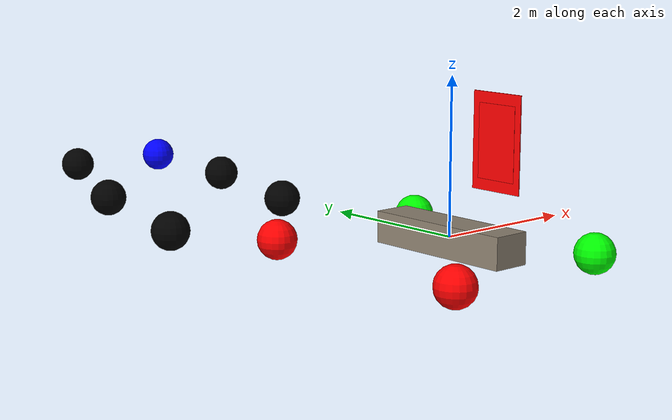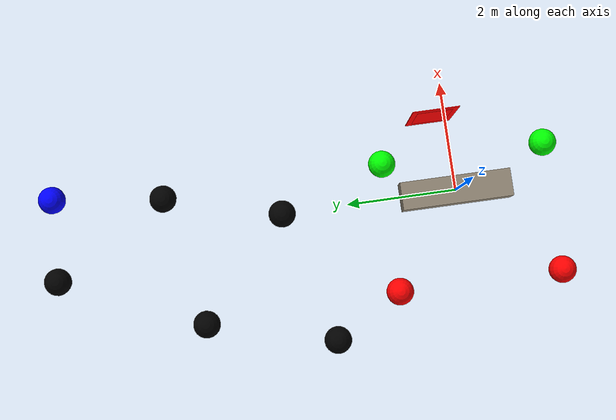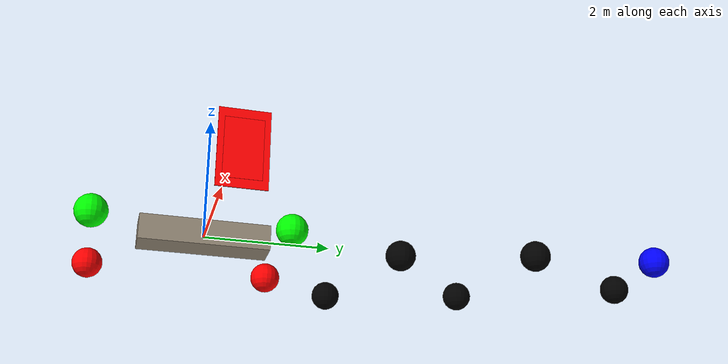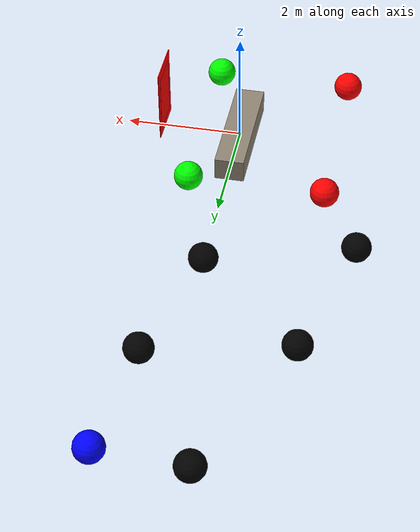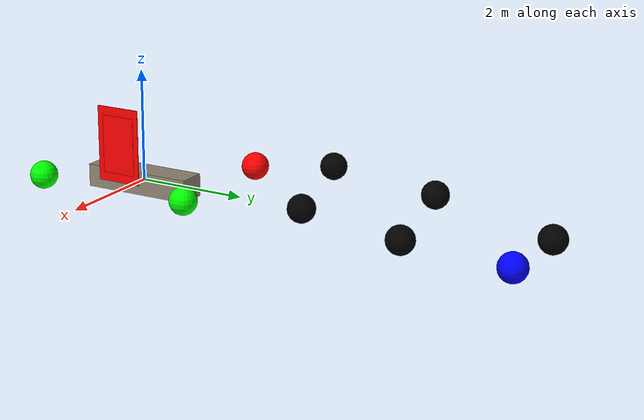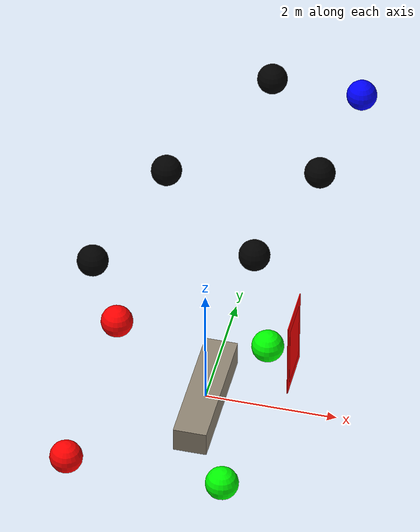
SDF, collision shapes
<?xml version="1.0"?>
<sdf version="1.6">
  <model name="speed_challenge">
    <!-- Speed Challenge -->

    <include>
      <static>true</static>
      <name>dock</name>
      <pose>0 0 0 0 0 1.57079</pose>
      <uri>dock_m4</uri>
    </include>

    <include>
      <static>true</static>
      <name>round_buoy_green_G1</name>
      <pose> 0.66 1.27 0 0 0 0 </pose>
      <uri>round_buoy_green</uri>
    </include>

    <include>
      <static>true</static>
      <name>round_buoy_green_G2</name>
      <pose> 0.66 -1.72 0 0 0 0 </pose>
      <uri>round_buoy_green</uri>
    </include>

     <include>
      <static>true</static>
      <name>round_buoy_red_G1</name>
      <pose> -1.7 1.27 0 0 0 0 </pose>
      <uri>round_buoy_red</uri>
    </include>

     <include>
      <static>true</static>
      <name>round_buoy_red_G2</name>
      <pose> -1.7 -1.72 0 0 0 0 </pose>
      <uri>round_buoy_red</uri>
    </include>

    <include>
      <static>true</static>
      <name>round_buoy_black_G1</name>
      <pose> -0.68 7.42 0 0 0 0 </pose>
      <uri>round_buoy_black</uri>
    </include>

    <include>
      <static>true</static>
      <name>round_buoy_black_G2</name>
      <pose> 0.57 5.34 0 0 0 0 </pose>
      <uri>round_buoy_black</uri>
    </include>

    <include>
      <static>true</static>
      <name>round_buoy_black_G3</name>
      <pose> -1.81 4.83 0 0 0 0 </pose>
      <uri>round_buoy_black</uri>
    </include>

    <include>
      <static>true</static>
      <name>round_buoy_black_G4</name>
      <pose> 0 3.21 0 0 0 0 </pose>
      <uri>round_buoy_black</uri>
    </include>

    <include>
      <static>true</static>
      <name>round_buoy_black_G5</name>
      <pose> -2.41 2.51 0 0 0 0 </pose>
      <uri>round_buoy_black</uri>
    </include>

    <include>
      <static>true</static>
      <name>light_panel</name>
      <pose>1.25 0.38 1 0 0 0</pose>
      <uri>light_panel</uri>
    </include>

    <include>
      <static>true</static>
      <name>round_buoy_blue</name>
      <pose> 0.82 7.36 0 0 0 0 </pose>
      <uri>round_buoy_blue</uri>
    </include>

  </model>
</sdf>

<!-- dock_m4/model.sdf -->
<sdf version="1.6">
  <model name="Dock_m4">
    <static>true</static>
    <link name="base_link">
      <visual name="dock">
        <geometry>
          <mesh>
            <uri>model://dock_m4/assets/dock_m4.stl</uri>
          </mesh>
        </geometry>
        <material>
          <ambient>0.34 0.31 0.27 1</ambient>
          <!-- Red color -->
          <diffuse>0.559642 0.515643 0.446934 1</diffuse>
          <specular>0.01 0.01 0.01 1</specular>
        </material>
      </visual>
      <collision name='tine1'>
        <pose>0 0 0 0 0 0</pose>
        <geometry>
          <box>
            <size>2.02606 0.506918 0.406521</size>
          </box>
        </geometry>
      </collision>
    </link>
  </model>
</sdf>

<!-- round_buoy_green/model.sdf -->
<sdf version="1.6">
    <model name="round_buoy_green">
        <link name="link">
            <inertial>
                <pose>0 0 0 0 0 0</pose>
                <mass>3.5</mass>
                <inertia>
                    <ixx>0.0875</ixx>
                    <ixy>0</ixy>
                    <ixz>0</ixz>
                    <iyy>0.0875</iyy>
                    <iyz>0</iyz>
                    <izz>0.0875</izz>
                </inertia>
            </inertial>
            <collision name="collision">
                <geometry>
                    <sphere>
                        <radius>0.25</radius>
                    </sphere>
                </geometry>
            </collision>
            <visual name="visual">
                <geometry>
                    <mesh>
                        <uri>meshes/mb_round_buoy.dae</uri>
                    </mesh>
                </geometry>
                <material>
                    <ambient>0 1 0 1</ambient>
                    <diffuse>0 1 0 1</diffuse>
                    <specular>0 1 0 1</specular>
                </material>
            </visual>
        </link>
    <!-- Hydrodynamics plugin -->
      <plugin
        filename="gz-waves1-hydrodynamics-system"
        name="gz::sim::systems::Hydrodynamics">

        <link_name>link</link_name>

        <hydrodynamics>
            <damping_on>1</damping_on>
            <viscous_drag_on>1</viscous_drag_on>
            <pressure_drag_on>1</pressure_drag_on>

            <!-- Linear and Angular Damping -->
            <cDampL1>1.0E-6</cDampL1>
            <cDampL2>1.0E-6</cDampL2>
            <cDampR1>1.0E-6</cDampR1>
            <cDampR2>1.0E-6</cDampR2>

            <!-- 'Pressure' Drag -->
            <cPDrag1>1.0E+2</cPDrag1>
            <cPDrag2>1.0E+2</cPDrag2>
            <fPDrag>0.4</fPDrag>
            <cSDrag1>1.0E+2</cSDrag1>
            <cSDrag2>1.0E+2</cSDrag2>
            <fSDrag>0.4</fSDrag>
            <vRDrag>1.0</vRDrag>
        </hydrodynamics>

        <!-- Control visibility of markers -->
        <markers>
            <update_rate>10</update_rate>
            <water_patch>0</water_patch>
            <waterline>0</waterline>
            <underwater_surface>0</underwater_surface>
        </markers>
        </plugin>
    </model>
</sdf>

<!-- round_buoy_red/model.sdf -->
<sdf version="1.6">
    <model name="round_buoy_red">
        <link name="link">
            <inertial>
                <pose>0 0 0 0 0 0</pose>
                <mass>3.5</mass>
                <inertia>
                    <ixx>0.0875</ixx>
                    <ixy>0</ixy>
                    <ixz>0</ixz>
                    <iyy>0.0875</iyy>
                    <iyz>0</iyz>
                    <izz>0.0875</izz>
                </inertia>
            </inertial>
            <collision name="collision">
                <geometry>
                    <sphere>
                        <radius>0.25</radius>
                    </sphere>
                </geometry>
            </collision>
            <visual name="visual">
                <geometry>
                    <mesh>
                        <uri>meshes/mb_round_buoy.dae</uri>
                    </mesh>
                </geometry>
                <material>
                    <ambient>1 0 0 1</ambient>
                    <diffuse>1 0 0 1</diffuse>
                    <specular>1 0 0 1</specular>
                </material>
            </visual>
        </link>
        <!-- Hydrodynamics plugin -->
      <plugin
        filename="gz-waves1-hydrodynamics-system"
        name="gz::sim::systems::Hydrodynamics">

        <link_name>link</link_name>

        <hydrodynamics>
            <damping_on>1</damping_on>
            <viscous_drag_on>1</viscous_drag_on>
            <pressure_drag_on>1</pressure_drag_on>

            <!-- Linear and Angular Damping -->
            <cDampL1>1.0E-6</cDampL1>
            <cDampL2>1.0E-6</cDampL2>
            <cDampR1>1.0E-6</cDampR1>
            <cDampR2>1.0E-6</cDampR2>

            <!-- 'Pressure' Drag -->
            <cPDrag1>1.0E+2</cPDrag1>
            <cPDrag2>1.0E+2</cPDrag2>
            <fPDrag>0.4</fPDrag>
            <cSDrag1>1.0E+2</cSDrag1>
            <cSDrag2>1.0E+2</cSDrag2>
            <fSDrag>0.4</fSDrag>
            <vRDrag>1.0</vRDrag>
        </hydrodynamics>

        <!-- Control visibility of markers -->
        <markers>
            <update_rate>10</update_rate>
            <water_patch>0</water_patch>
            <waterline>0</waterline>
            <underwater_surface>0</underwater_surface>
        </markers>
        </plugin>
    </model>
</sdf>

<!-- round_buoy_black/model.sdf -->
<sdf version="1.6">
    <model name="round_buoy_black">
        <link name="link">
            <inertial>
                <pose>0 0 0 0 0 0</pose>
                <mass>3.5</mass>
                <inertia>
                    <ixx>0.0875</ixx>
                    <ixy>0</ixy>
                    <ixz>0</ixz>
                    <iyy>0.0875</iyy>
                    <iyz>0</iyz>
                    <izz>0.0875</izz>
                </inertia>
            </inertial>
            <collision name="collision">
                <geometry>
                    <sphere>
                        <radius>0.25</radius>
                    </sphere>
                </geometry>
            </collision>
            <visual name="visual">
                <geometry>
                    <mesh>
                        <uri>meshes/mb_round_buoy.dae</uri>
                    </mesh>
                </geometry>
                <material>
                    <ambient>0 0 0 1</ambient>
                    <diffuse>0 0 0 1</diffuse>
                    <specular>0 0 0 1</specular>
                </material>
            </visual>
        </link>
        <!-- Hydrodynamics plugin -->
      <plugin
        filename="gz-waves1-hydrodynamics-system"
        name="gz::sim::systems::Hydrodynamics">

        <link_name>link</link_name>

        <hydrodynamics>
            <damping_on>1</damping_on>
            <viscous_drag_on>1</viscous_drag_on>
            <pressure_drag_on>1</pressure_drag_on>

            <!-- Linear and Angular Damping -->
            <cDampL1>1.0E-6</cDampL1>
            <cDampL2>1.0E-6</cDampL2>
            <cDampR1>1.0E-6</cDampR1>
            <cDampR2>1.0E-6</cDampR2>

            <!-- 'Pressure' Drag -->
            <cPDrag1>1.0E+2</cPDrag1>
            <cPDrag2>1.0E+2</cPDrag2>
            <fPDrag>0.4</fPDrag>
            <cSDrag1>1.0E+2</cSDrag1>
            <cSDrag2>1.0E+2</cSDrag2>
            <fSDrag>0.4</fSDrag>
            <vRDrag>1.0</vRDrag>
        </hydrodynamics>

        <!-- Control visibility of markers -->
        <markers>
            <update_rate>10</update_rate>
            <water_patch>0</water_patch>
            <waterline>0</waterline>
            <underwater_surface>0</underwater_surface>
        </markers>
        </plugin>
    </model>
</sdf>

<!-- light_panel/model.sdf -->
<sdf version="1.6">
  <model name="light_panel">
    <static>true</static>
    <link name="base_link">
      <collision name="light_panel_p1">
        <geometry>
          <box>
            <size>0.019 0.6096 1.0</size>
          </box>
        </geometry>
      </collision>
      <visual name="light_panel_p1">
        <geometry>
          <box>
            <size>0.019 0.6096 1.0</size>
          </box>
        </geometry>
        <material>
          <ambient>1 0 0 1</ambient>
          <diffuse>1 0 0 1</diffuse>
          <specular>1 0 0 1</specular>
          <emissive>0 0 0 0.5</emissive>
        </material>
      </visual>
      <collision name="light_panel_p2">
        <geometry>
          <box>
            <size>0.015 0.8 1.3</size>
          </box>
        </geometry>
      </collision>
      <visual name="light_panel_p2">
        <geometry>
          <box>
            <size>0.015 0.8 1.3</size>
          </box>
        </geometry>
        <material>
          <ambient>1 1 1 1</ambient>
          <diffuse>1 1 1 1</diffuse>
          <specular>1 1 1 1</specular>
          <emissive>0 0 0 0.5</emissive>
        </material>
      </visual>

    </link>
  </model>
</sdf>

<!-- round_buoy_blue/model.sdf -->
<sdf version="1.6">
    <model name="round_buoy_blue">
        <link name="link">
            <inertial>
                <pose>0 0 0 0 0 0</pose>
                <mass>3.5</mass>
                <inertia>
                    <ixx>0.0875</ixx>
                    <ixy>0</ixy>
                    <ixz>0</ixz>
                    <iyy>0.0875</iyy>
                    <iyz>0</iyz>
                    <izz>0.0875</izz>
                </inertia>
            </inertial>
            <collision name="collision">
                <geometry>
                    <sphere>
                        <radius>0.25</radius>
                    </sphere>
                </geometry>
            </collision>
            <visual name="visual">
                <geometry>
                    <mesh>
                        <uri>meshes/mb_round_buoy.dae</uri>
                    </mesh>
                </geometry>
                <material>
                    <ambient>0 0 1 1</ambient>
                    <diffuse>0 0 1 1</diffuse>
                    <specular>0 0 1 1</specular>
                </material>
            </visual>
        </link>
    </model>
</sdf>
